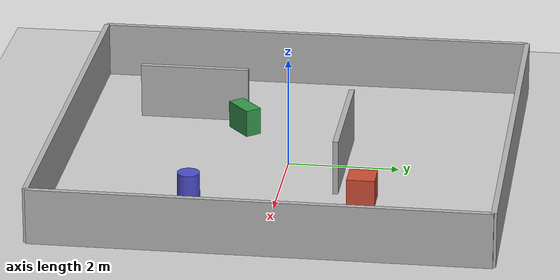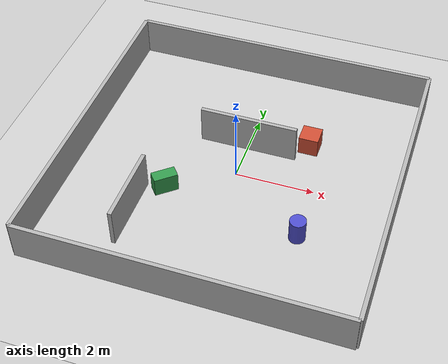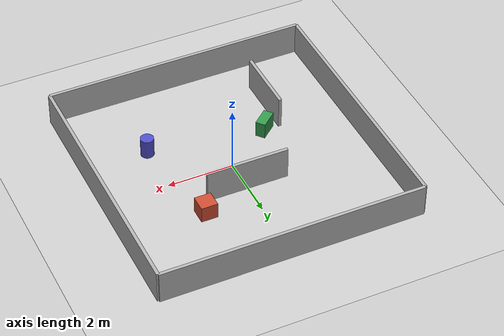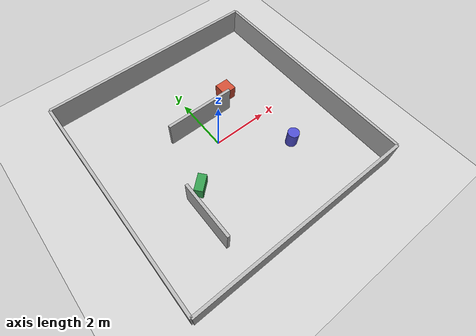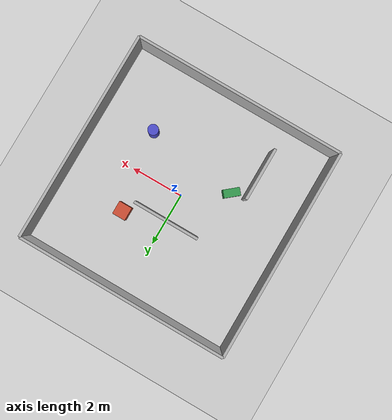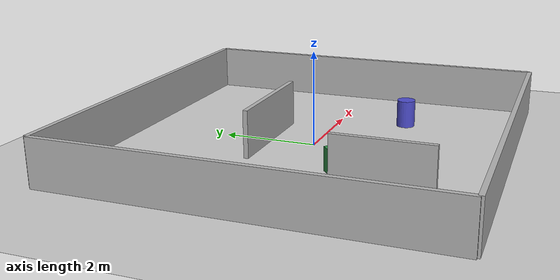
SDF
<?xml version="1.0"?>
<sdf version="1.6">
  <world name="slam_room">

    <!-- Physics -->
    <physics type="ode">
      <real_time_update_rate>1000.0</real_time_update_rate>
      <max_step_size>0.001</max_step_size>
    </physics>

    <!-- Lighting -->
    <include>
      <uri>model://sun</uri>
    </include>
    <include>
      <uri>model://ground_plane</uri>
    </include>

    <!-- ═══ OUTER WALLS ═══ -->
    <!-- North wall -->
    <model name="wall_north">
      <static>true</static>
      <pose>0 4 0.5 0 0 0</pose>
      <link name="link">
        <collision name="col"><geometry><box><size>8 0.1 1</size></box></geometry></collision>
        <visual name="vis"><geometry><box><size>8 0.1 1</size></box></geometry>
          <material><ambient>0.7 0.7 0.7 1</ambient></material></visual>
      </link>
    </model>

    <!-- South wall -->
    <model name="wall_south">
      <static>true</static>
      <pose>0 -4 0.5 0 0 0</pose>
      <link name="link">
        <collision name="col"><geometry><box><size>8 0.1 1</size></box></geometry></collision>
        <visual name="vis"><geometry><box><size>8 0.1 1</size></box></geometry>
          <material><ambient>0.7 0.7 0.7 1</ambient></material></visual>
      </link>
    </model>

    <!-- East wall -->
    <model name="wall_east">
      <static>true</static>
      <pose>4 0 0.5 0 0 0</pose>
      <link name="link">
        <collision name="col"><geometry><box><size>0.1 8 1</size></box></geometry></collision>
        <visual name="vis"><geometry><box><size>0.1 8 1</size></box></geometry>
          <material><ambient>0.7 0.7 0.7 1</ambient></material></visual>
      </link>
    </model>

    <!-- West wall -->
    <model name="wall_west">
      <static>true</static>
      <pose>-4 0 0.5 0 0 0</pose>
      <link name="link">
        <collision name="col"><geometry><box><size>0.1 8 1</size></box></geometry></collision>
        <visual name="vis"><geometry><box><size>0.1 8 1</size></box></geometry>
          <material><ambient>0.7 0.7 0.7 1</ambient></material></visual>
      </link>
    </model>

    <!-- ═══ INNER OBSTACLES ═══ -->
    <!-- Box obstacle 1 -->
    <model name="box_1">
      <static>true</static>
      <pose>1.5 1.5 0.25 0 0 0</pose>
      <link name="link">
        <collision name="col"><geometry><box><size>0.5 0.5 0.5</size></box></geometry></collision>
        <visual name="vis"><geometry><box><size>0.5 0.5 0.5</size></box></geometry>
          <material><ambient>0.8 0.3 0.2 1</ambient></material></visual>
      </link>
    </model>

    <!-- Box obstacle 2 -->
    <model name="box_2">
      <static>true</static>
      <pose>-1.5 -1.0 0.25 0 0 0.7</pose>
      <link name="link">
        <collision name="col"><geometry><box><size>0.6 0.3 0.5</size></box></geometry></collision>
        <visual name="vis"><geometry><box><size>0.6 0.3 0.5</size></box></geometry>
          <material><ambient>0.2 0.6 0.3 1</ambient></material></visual>
      </link>
    </model>

    <!-- Cylinder obstacle -->
    <model name="cylinder_1">
      <static>true</static>
      <pose>2.0 -1.5 0.3 0 0 0</pose>
      <link name="link">
        <collision name="col"><geometry><cylinder><radius>0.2</radius><length>0.6</length></cylinder></geometry></collision>
        <visual name="vis"><geometry><cylinder><radius>0.2</radius><length>0.6</length></cylinder></geometry>
          <material><ambient>0.3 0.3 0.8 1</ambient></material></visual>
      </link>
    </model>

    <!-- Internal partition wall (L-shaped room feel) -->
    <model name="partition_1">
      <static>true</static>
      <pose>0 1.0 0.5 0 0 0</pose>
      <link name="link">
        <collision name="col"><geometry><box><size>2.5 0.1 1</size></box></geometry></collision>
        <visual name="vis"><geometry><box><size>2.5 0.1 1</size></box></geometry>
          <material><ambient>0.7 0.7 0.7 1</ambient></material></visual>
      </link>
    </model>

    <model name="partition_2">
      <static>true</static>
      <pose>-2.0 -2.0 0.5 0 0 1.5708</pose>
      <link name="link">
        <collision name="col"><geometry><box><size>2.0 0.1 1</size></box></geometry></collision>
        <visual name="vis"><geometry><box><size>2.0 0.1 1</size></box></geometry>
          <material><ambient>0.7 0.7 0.7 1</ambient></material></visual>
      </link>
    </model>

  </world>
</sdf>
